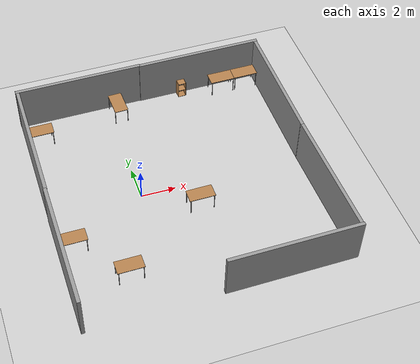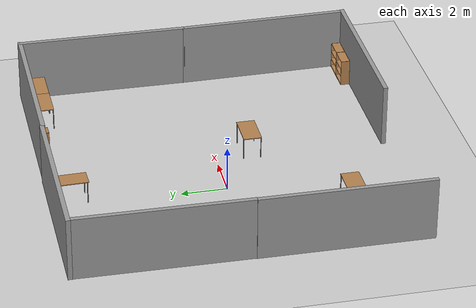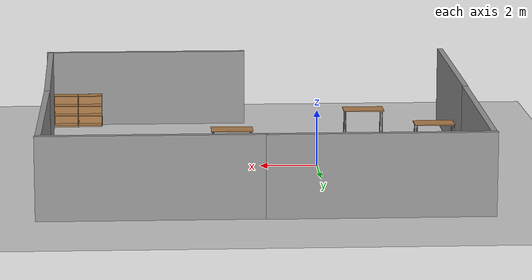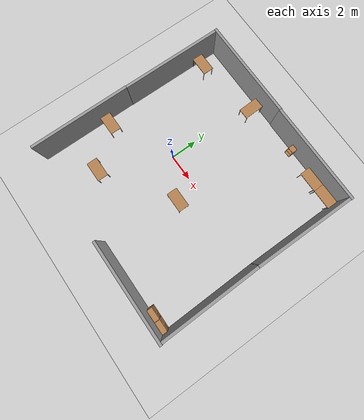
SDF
<sdf version="1.6">
 <world name="default">
  <light name="sun" type="directional">
   <pose>0 0 10 0 -0 0</pose>
   <diffuse>0.8 0.8 0.8 1</diffuse>
   <specular>0.2 0.2 0.2 1</specular>
   <attenuation>
    <range>1000</range>
    <constant>0.9</constant>
    <linear>0.01</linear>
    <quadratic>0.001</quadratic>
   </attenuation>
   <direction>-0.5 0.1 -0.9</direction>
  </light>
  <model name="ground_plane">
   <static>1</static>
   <link name="link">
    <collision name="collision">
     <geometry><plane><normal>0 0 1</normal><size>100 100</size></plane></geometry>
     <surface>
      <contact><collide_bitmask>65535</collide_bitmask></contact>
      <friction><ode><mu>100</mu><mu2>50</mu2></ode></friction>
     </surface>
    </collision>
    <visual name="visual">
     <cast_shadows>0</cast_shadows>
     <geometry><plane><normal>0 0 1</normal><size>100 100</size></plane></geometry>
     <material>
      <script><uri>file://media/materials/scripts/gazebo.material</uri><name>Gazebo/Grey</name></script>
     </material>
    </visual>
   </link>
  </model>
  <gravity>0 0 -9.8</gravity>
  <magnetic_field>6e-06 2.3e-05 -4.2e-05</magnetic_field>
  <atmosphere type="adiabatic"/>
  <physics name="default_physics" default="0" type="ode">
   <max_step_size>0.001</max_step_size>
   <real_time_factor>1</real_time_factor>
   <real_time_update_rate>1000</real_time_update_rate>
  </physics>
  <scene><ambient>0.4 0.4 0.4 1</ambient><background>0.7 0.7 0.7 1</background><shadows>1</shadows></scene>
  <spherical_coordinates>
   <surface_model>EARTH_WGS84</surface_model>
   <latitude_deg>0</latitude_deg>
   <longitude_deg>0</longitude_deg>
   <elevation>0</elevation>
   <heading_deg>0</heading_deg>
  </spherical_coordinates>
  <model name="grey_wall">
   <static>1</static>
   <link name="link">
    <pose>0 0 1.4 0 -0 0</pose>
    <collision name="collision"><geometry><box><size>7.5 0.2 2.8</size></box></geometry></collision>
    <visual name="visual">
     <cast_shadows>0</cast_shadows>
     <geometry><box><size>7.5 0.2 2.8</size></box></geometry>
     <material>
      <script>
       <uri>model://grey_wall/materials/scripts</uri>
       <uri>model://grey_wall/materials/textures</uri>
       <name>vrc/grey_wall</name>
      </script>
     </material>
    </visual>
   </link>
   <pose>5.90165 7.47527 0 0 -0 0</pose>
  </model>
  <model name="grey_wall_clone">
   <static>1</static>
   <link name="link">
    <pose>0 0 1.4 0 -0 0</pose>
    <collision name="collision"><geometry><box><size>7.5 0.2 2.8</size></box></geometry></collision>
    <visual name="visual">
     <cast_shadows>0</cast_shadows>
     <geometry><box><size>7.5 0.2 2.8</size></box></geometry>
     <material>
      <script>
       <uri>model://grey_wall/materials/scripts</uri>
       <uri>model://grey_wall/materials/textures</uri>
       <name>vrc/grey_wall</name>
      </script>
     </material>
    </visual>
   </link>
   <pose>-1.53483 7.51051 0 0 -0 0</pose>
  </model>
  <model name="grey_wall_clone_0">
   <static>1</static>
   <link name="link">
    <pose>0 0 1.4 0 -0 0</pose>
    <collision name="collision"><geometry><box><size>7.5 0.2 2.8</size></box></geometry></collision>
    <visual name="visual">
     <cast_shadows>0</cast_shadows>
     <geometry><box><size>7.5 0.2 2.8</size></box></geometry>
     <material>
      <script>
       <uri>model://grey_wall/materials/scripts</uri>
       <uri>model://grey_wall/materials/textures</uri>
       <name>vrc/grey_wall</name>
      </script>
     </material>
    </visual>
   </link>
   <pose>-5.20328 3.65912 0 0 -0 1.56118</pose>
  </model>
  <model name="grey_wall_clone_1">
   <static>1</static>
   <link name="link">
    <pose>0 0 1.4 0 -0 0</pose>
    <collision name="collision"><geometry><box><size>7.5 0.2 2.8</size></box></geometry></collision>
    <visual name="visual">
     <cast_shadows>0</cast_shadows>
     <geometry><box><size>7.5 0.2 2.8</size></box></geometry>
     <material>
      <script>
       <uri>model://grey_wall/materials/scripts</uri>
       <uri>model://grey_wall/materials/textures</uri>
       <name>vrc/grey_wall</name>
      </script>
     </material>
    </visual>
   </link>
   <pose>9.50636 3.7466 0 0 0 -1.57628</pose>
  </model>
  <model name="grey_wall_clone_2">
   <static>1</static>
   <link name="link">
    <pose>0 0 1.4 0 -0 0</pose>
    <collision name="collision"><geometry><box><size>7.5 0.2 2.8</size></box></geometry></collision>
    <visual name="visual">
     <cast_shadows>0</cast_shadows>
     <geometry><box><size>7.5 0.2 2.8</size></box></geometry>
     <material>
      <script>
       <uri>model://grey_wall/materials/scripts</uri>
       <uri>model://grey_wall/materials/textures</uri>
       <name>vrc/grey_wall</name>
      </script>
     </material>
    </visual>
   </link>
   <pose>9.54362 -3.68825 0 0 0 -1.55516</pose>
  </model>
  <model name="grey_wall_clone_3">
   <static>1</static>
   <link name="link">
    <pose>0 0 1.4 0 -0 0</pose>
    <collision name="collision"><geometry><box><size>7.5 0.2 2.8</size></box></geometry></collision>
    <visual name="visual">
     <cast_shadows>0</cast_shadows>
     <geometry><box><size>7.5 0.2 2.8</size></box></geometry>
     <material>
      <script>
       <uri>model://grey_wall/materials/scripts</uri>
       <uri>model://grey_wall/materials/textures</uri>
       <name>vrc/grey_wall</name>
      </script>
     </material>
    </visual>
   </link>
   <pose>5.99134 -7.4762 0 0 -0 0</pose>
  </model>
  <model name="grey_wall_clone_5">
   <static>1</static>
   <link name="link">
    <pose>0 0 1.4 0 -0 0</pose>
    <collision name="collision"><geometry><box><size>7.5 0.2 2.8</size></box></geometry></collision>
    <visual name="visual">
     <cast_shadows>0</cast_shadows>
     <geometry><box><size>7.5 0.2 2.8</size></box></geometry>
     <material>
      <script>
       <uri>model://grey_wall/materials/scripts</uri>
       <uri>model://grey_wall/materials/textures</uri>
       <name>vrc/grey_wall</name>
      </script>
     </material>
    </visual>
   </link>
   <pose>-5.27862 -3.8276 0 0 0 -1.57536</pose>
  </model>
  <model name="table">
   <static>1</static>
   <link name="link">
    <collision name="surface">
     <pose>0 0 1 0 -0 0</pose>
     <geometry><box><size>1.5 0.8 0.03</size></box></geometry>
     <surface><friction><ode><mu>0.6</mu><mu2>0.6</mu2></ode></friction></surface>
    </collision>
    <visual name="visual1">
     <pose>0 0 1 0 -0 0</pose>
     <geometry><box><size>1.5 0.8 0.03</size></box></geometry>
     <material>
      <script><uri>file://media/materials/scripts/gazebo.material</uri><name>Gazebo/Wood</name></script>
     </material>
    </visual>
    <collision name="front_left_leg">
     <pose>0.68 0.38 0.5 0 -0 0</pose>
     <geometry><cylinder><radius>0.02</radius><length>1</length></cylinder></geometry>
    </collision>
    <visual name="front_left_leg">
     <pose>0.68 0.38 0.5 0 -0 0</pose>
     <geometry><cylinder><radius>0.02</radius><length>1</length></cylinder></geometry>
     <material>
      <script><uri>file://media/materials/scripts/gazebo.material</uri><name>Gazebo/Grey</name></script>
     </material>
    </visual>
    <collision name="front_right_leg">
     <pose>0.68 -0.38 0.5 0 -0 0</pose>
     <geometry><cylinder><radius>0.02</radius><length>1</length></cylinder></geometry>
    </collision>
    <visual name="front_right_leg">
     <pose>0.68 -0.38 0.5 0 -0 0</pose>
     <geometry><cylinder><radius>0.02</radius><length>1</length></cylinder></geometry>
     <material>
      <script><uri>file://media/materials/scripts/gazebo.material</uri><name>Gazebo/Grey</name></script>
     </material>
    </visual>
    <collision name="back_right_leg">
     <pose>-0.68 -0.38 0.5 0 -0 0</pose>
     <geometry><cylinder><radius>0.02</radius><length>1</length></cylinder></geometry>
    </collision>
    <visual name="back_right_leg">
     <pose>-0.68 -0.38 0.5 0 -0 0</pose>
     <geometry><cylinder><radius>0.02</radius><length>1</length></cylinder></geometry>
     <material>
      <script><uri>file://media/materials/scripts/gazebo.material</uri><name>Gazebo/Grey</name></script>
     </material>
    </visual>
    <collision name="back_left_leg">
     <pose>-0.68 0.38 0.5 0 -0 0</pose>
     <geometry><cylinder><radius>0.02</radius><length>1</length></cylinder></geometry>
    </collision>
    <visual name="back_left_leg">
     <pose>-0.68 0.38 0.5 0 -0 0</pose>
     <geometry><cylinder><radius>0.02</radius><length>1</length></cylinder></geometry>
     <material>
      <script><uri>file://media/materials/scripts/gazebo.material</uri><name>Gazebo/Grey</name></script>
     </material>
    </visual>
   </link>
   <pose>8.66692 6.86787 0 0 -0 0</pose>
  </model>
  <model name="table_clone">
   <static>1</static>
   <link name="link">
    <collision name="surface">
     <pose>0 0 1 0 -0 0</pose>
     <geometry><box><size>1.5 0.8 0.03</size></box></geometry>
     <surface><friction><ode><mu>0.6</mu><mu2>0.6</mu2></ode></friction></surface>
    </collision>
    <visual name="visual1">
     <pose>0 0 1 0 -0 0</pose>
     <geometry><box><size>1.5 0.8 0.03</size></box></geometry>
     <material>
      <script><uri>file://media/materials/scripts/gazebo.material</uri><name>Gazebo/Wood</name></script>
     </material>
    </visual>
    <collision name="front_left_leg">
     <pose>0.68 0.38 0.5 0 -0 0</pose>
     <geometry><cylinder><radius>0.02</radius><length>1</length></cylinder></geometry>
    </collision>
    <visual name="front_left_leg">
     <pose>0.68 0.38 0.5 0 -0 0</pose>
     <geometry><cylinder><radius>0.02</radius><length>1</length></cylinder></geometry>
     <material>
      <script><uri>file://media/materials/scripts/gazebo.material</uri><name>Gazebo/Grey</name></script>
     </material>
    </visual>
    <collision name="front_right_leg">
     <pose>0.68 -0.38 0.5 0 -0 0</pose>
     <geometry><cylinder><radius>0.02</radius><length>1</length></cylinder></geometry>
    </collision>
    <visual name="front_right_leg">
     <pose>0.68 -0.38 0.5 0 -0 0</pose>
     <geometry><cylinder><radius>0.02</radius><length>1</length></cylinder></geometry>
     <material>
      <script><uri>file://media/materials/scripts/gazebo.material</uri><name>Gazebo/Grey</name></script>
     </material>
    </visual>
    <collision name="back_right_leg">
     <pose>-0.68 -0.38 0.5 0 -0 0</pose>
     <geometry><cylinder><radius>0.02</radius><length>1</length></cylinder></geometry>
    </collision>
    <visual name="back_right_leg">
     <pose>-0.68 -0.38 0.5 0 -0 0</pose>
     <geometry><cylinder><radius>0.02</radius><length>1</length></cylinder></geometry>
     <material>
      <script><uri>file://media/materials/scripts/gazebo.material</uri><name>Gazebo/Grey</name></script>
     </material>
    </visual>
    <collision name="back_left_leg">
     <pose>-0.68 0.38 0.5 0 -0 0</pose>
     <geometry><cylinder><radius>0.02</radius><length>1</length></cylinder></geometry>
    </collision>
    <visual name="back_left_leg">
     <pose>-0.68 0.38 0.5 0 -0 0</pose>
     <geometry><cylinder><radius>0.02</radius><length>1</length></cylinder></geometry>
     <material>
      <script><uri>file://media/materials/scripts/gazebo.material</uri><name>Gazebo/Grey</name></script>
     </material>
    </visual>
   </link>
   <pose>7.18469 6.86125 0 0 -0 0</pose>
  </model>
  <model name="table_0">
   <static>1</static>
   <link name="link">
    <collision name="surface">
     <pose>0 0 1 0 -0 0</pose>
     <geometry><box><size>1.5 0.8 0.03</size></box></geometry>
     <surface><friction><ode><mu>0.6</mu><mu2>0.6</mu2></ode></friction></surface>
    </collision>
    <visual name="visual1">
     <pose>0 0 1 0 -0 0</pose>
     <geometry><box><size>1.5 0.8 0.03</size></box></geometry>
     <material>
      <script><uri>file://media/materials/scripts/gazebo.material</uri><name>Gazebo/Wood</name></script>
     </material>
    </visual>
    <collision name="front_left_leg">
     <pose>0.68 0.38 0.5 0 -0 0</pose>
     <geometry><cylinder><radius>0.02</radius><length>1</length></cylinder></geometry>
    </collision>
    <visual name="front_left_leg">
     <pose>0.68 0.38 0.5 0 -0 0</pose>
     <geometry><cylinder><radius>0.02</radius><length>1</length></cylinder></geometry>
     <material>
      <script><uri>file://media/materials/scripts/gazebo.material</uri><name>Gazebo/Grey</name></script>
     </material>
    </visual>
    <collision name="front_right_leg">
     <pose>0.68 -0.38 0.5 0 -0 0</pose>
     <geometry><cylinder><radius>0.02</radius><length>1</length></cylinder></geometry>
    </collision>
    <visual name="front_right_leg">
     <pose>0.68 -0.38 0.5 0 -0 0</pose>
     <geometry><cylinder><radius>0.02</radius><length>1</length></cylinder></geometry>
     <material>
      <script><uri>file://media/materials/scripts/gazebo.material</uri><name>Gazebo/Grey</name></script>
     </material>
    </visual>
    <collision name="back_right_leg">
     <pose>-0.68 -0.38 0.5 0 -0 0</pose>
     <geometry><cylinder><radius>0.02</radius><length>1</length></cylinder></geometry>
    </collision>
    <visual name="back_right_leg">
     <pose>-0.68 -0.38 0.5 0 -0 0</pose>
     <geometry><cylinder><radius>0.02</radius><length>1</length></cylinder></geometry>
     <material>
      <script><uri>file://media/materials/scripts/gazebo.material</uri><name>Gazebo/Grey</name></script>
     </material>
    </visual>
    <collision name="back_left_leg">
     <pose>-0.68 0.38 0.5 0 -0 0</pose>
     <geometry><cylinder><radius>0.02</radius><length>1</length></cylinder></geometry>
    </collision>
    <visual name="back_left_leg">
     <pose>-0.68 0.38 0.5 0 -0 0</pose>
     <geometry><cylinder><radius>0.02</radius><length>1</length></cylinder></geometry>
     <material>
      <script><uri>file://media/materials/scripts/gazebo.material</uri><name>Gazebo/Grey</name></script>
     </material>
    </visual>
   </link>
   <pose>2.94508 -1.58833 0 0 -0 0</pose>
  </model>
  <model name="bookshelf">
   <static>1</static>
   <link name="link">
    <inertial><mass>1</mass></inertial>
    <collision name="back">
     <pose>0 0.005 0.6 0 -0 0</pose>
     <geometry><box><size>0.9 0.01 1.2</size></box></geometry>
    </collision>
    <visual name="visual1">
     <pose>0 0.005 0.6 0 -0 0</pose>
     <geometry><box><size>0.9 0.01 1.2</size></box></geometry>
     <material>
      <script><uri>file://media/materials/scripts/gazebo.material</uri><name>Gazebo/Wood</name></script>
     </material>
    </visual>
    <collision name="left_side">
     <pose>0.45 -0.195 0.6 0 -0 0</pose>
     <geometry><box><size>0.02 0.4 1.2</size></box></geometry>
    </collision>
    <visual name="visual2">
     <pose>0.45 -0.195 0.6 0 -0 0</pose>
     <geometry><box><size>0.02 0.4 1.2</size></box></geometry>
     <material>
      <script><uri>file://media/materials/scripts/gazebo.material</uri><name>Gazebo/Wood</name></script>
     </material>
    </visual>
    <collision name="right_side">
     <pose>-0.45 -0.195 0.6 0 -0 0</pose>
     <geometry><box><size>0.02 0.4 1.2</size></box></geometry>
    </collision>
    <visual name="visual3">
     <pose>-0.45 -0.195 0.6 0 -0 0</pose>
     <geometry><box><size>0.02 0.4 1.2</size></box></geometry>
     <material>
      <script><uri>file://media/materials/scripts/gazebo.material</uri><name>Gazebo/Wood</name></script>
     </material>
    </visual>
    <collision name="bottom">
     <pose>0 -0.195 0.03 0 -0 0</pose>
     <geometry><box><size>0.88 0.4 0.06</size></box></geometry>
    </collision>
    <visual name="visual4">
     <pose>0 -0.195 0.03 0 -0 0</pose>
     <geometry><box><size>0.88 0.4 0.06</size></box></geometry>
     <material>
      <script><uri>file://media/materials/scripts/gazebo.material</uri><name>Gazebo/Wood</name></script>
     </material>
    </visual>
    <collision name="top">
     <pose>0 -0.195 1.19 0 -0 0</pose>
     <geometry><box><size>0.88 0.4 0.02</size></box></geometry>
    </collision>
    <visual name="visual5">
     <pose>0 -0.195 1.19 0 -0 0</pose>
     <geometry><box><size>0.88 0.4 0.02</size></box></geometry>
     <material>
      <script><uri>file://media/materials/scripts/gazebo.material</uri><name>Gazebo/Wood</name></script>
     </material>
    </visual>
    <collision name="low_shelf">
     <pose>0 -0.195 0.43 0 -0 0</pose>
     <geometry><box><size>0.88 0.4 0.02</size></box></geometry>
    </collision>
    <visual name="visual6">
     <pose>0 -0.195 0.43 0 -0 0</pose>
     <geometry><box><size>0.88 0.4 0.02</size></box></geometry>
     <material>
      <script><uri>file://media/materials/scripts/gazebo.material</uri><name>Gazebo/Wood</name></script>
     </material>
    </visual>
    <collision name="high_shelf">
     <pose>0 -0.195 0.8 0 -0 0</pose>
     <geometry><box><size>0.88 0.4 0.02</size></box></geometry>
    </collision>
    <visual name="visual7">
     <pose>0 -0.195 0.8 0 -0 0</pose>
     <geometry><box><size>0.88 0.4 0.02</size></box></geometry>
     <material>
      <script><uri>file://media/materials/scripts/gazebo.material</uri><name>Gazebo/Wood</name></script>
     </material>
    </visual>
   </link>
   <pose>9.0472 -7.36988 0 0 -0 3.13895</pose>
  </model>
  <model name="bookshelf_clone">
   <static>1</static>
   <link name="link">
    <inertial><mass>1</mass></inertial>
    <collision name="back">
     <pose>0 0.005 0.6 0 -0 0</pose>
     <geometry><box><size>0.9 0.01 1.2</size></box></geometry>
    </collision>
    <visual name="visual1">
     <pose>0 0.005 0.6 0 -0 0</pose>
     <geometry><box><size>0.9 0.01 1.2</size></box></geometry>
     <material>
      <script><uri>file://media/materials/scripts/gazebo.material</uri><name>Gazebo/Wood</name></script>
     </material>
    </visual>
    <collision name="left_side">
     <pose>0.45 -0.195 0.6 0 -0 0</pose>
     <geometry><box><size>0.02 0.4 1.2</size></box></geometry>
    </collision>
    <visual name="visual2">
     <pose>0.45 -0.195 0.6 0 -0 0</pose>
     <geometry><box><size>0.02 0.4 1.2</size></box></geometry>
     <material>
      <script><uri>file://media/materials/scripts/gazebo.material</uri><name>Gazebo/Wood</name></script>
     </material>
    </visual>
    <collision name="right_side">
     <pose>-0.45 -0.195 0.6 0 -0 0</pose>
     <geometry><box><size>0.02 0.4 1.2</size></box></geometry>
    </collision>
    <visual name="visual3">
     <pose>-0.45 -0.195 0.6 0 -0 0</pose>
     <geometry><box><size>0.02 0.4 1.2</size></box></geometry>
     <material>
      <script><uri>file://media/materials/scripts/gazebo.material</uri><name>Gazebo/Wood</name></script>
     </material>
    </visual>
    <collision name="bottom">
     <pose>0 -0.195 0.03 0 -0 0</pose>
     <geometry><box><size>0.88 0.4 0.06</size></box></geometry>
    </collision>
    <visual name="visual4">
     <pose>0 -0.195 0.03 0 -0 0</pose>
     <geometry><box><size>0.88 0.4 0.06</size></box></geometry>
     <material>
      <script><uri>file://media/materials/scripts/gazebo.material</uri><name>Gazebo/Wood</name></script>
     </material>
    </visual>
    <collision name="top">
     <pose>0 -0.195 1.19 0 -0 0</pose>
     <geometry><box><size>0.88 0.4 0.02</size></box></geometry>
    </collision>
    <visual name="visual5">
     <pose>0 -0.195 1.19 0 -0 0</pose>
     <geometry><box><size>0.88 0.4 0.02</size></box></geometry>
     <material>
      <script><uri>file://media/materials/scripts/gazebo.material</uri><name>Gazebo/Wood</name></script>
     </material>
    </visual>
    <collision name="low_shelf">
     <pose>0 -0.195 0.43 0 -0 0</pose>
     <geometry><box><size>0.88 0.4 0.02</size></box></geometry>
    </collision>
    <visual name="visual6">
     <pose>0 -0.195 0.43 0 -0 0</pose>
     <geometry><box><size>0.88 0.4 0.02</size></box></geometry>
     <material>
      <script><uri>file://media/materials/scripts/gazebo.material</uri><name>Gazebo/Wood</name></script>
     </material>
    </visual>
    <collision name="high_shelf">
     <pose>0 -0.195 0.8 0 -0 0</pose>
     <geometry><box><size>0.88 0.4 0.02</size></box></geometry>
    </collision>
    <visual name="visual7">
     <pose>0 -0.195 0.8 0 -0 0</pose>
     <geometry><box><size>0.88 0.4 0.02</size></box></geometry>
     <material>
      <script><uri>file://media/materials/scripts/gazebo.material</uri><name>Gazebo/Wood</name></script>
     </material>
    </visual>
   </link>
   <pose>8.13691 -7.36715 0 0 -0 3.13895</pose>
  </model>
  <model name="cabinet">
   <static>1</static>
   <link name="cabinet_bottom_plate">
    <inertial>
     <pose>0 0 -1 0 -0 0</pose>
     <inertia><ixx>2.05</ixx><ixy>0</ixy><ixz>0</ixz><iyy>2.05</iyy><iyz>0</iyz><izz>2.05</izz></inertia>
     <mass>25</mass>
    </inertial>
    <collision name="cabinet_bottom_plate_geom">
     <pose>0 0 0.01 0 -0 0</pose>
     <geometry><box><size>0.45 0.45 0.02</size></box></geometry>
    </collision>
    <visual name="cabinet_bottom_plate_geom_visual">
     <pose>0 0 0.01 0 -0 0</pose>
     <geometry><box><size>0.45 0.45 0.02</size></box></geometry>
     <material>
      <script><uri>file://media/materials/scripts/gazebo.material</uri><name>Gazebo/Wood</name></script>
     </material>
    </visual>
    <collision name="cabinet_bottom_plate_geom_cabinet_back_plate">
     <pose>0.235 0 0.51 0 -0 0</pose>
     <geometry><box><size>0.02 0.45 1.02</size></box></geometry>
    </collision>
    <visual name="cabinet_bottom_plate_geom_cabinet_back_plate_visual">
     <pose>0.235 0 0.51 0 -0 0</pose>
     <geometry><box><size>0.02 0.45 1.02</size></box></geometry>
     <material>
      <script><uri>file://media/materials/scripts/gazebo.material</uri><name>Gazebo/Wood</name></script>
     </material>
    </visual>
    <collision name="cabinet_bottom_plate_geom_cabinet_left_plate">
     <pose>0 0.235 0.51 0 -0 0</pose>
     <geometry><box><size>0.45 0.02 1.02</size></box></geometry>
    </collision>
    <visual name="cabinet_bottom_plate_geom_cabinet_left_plate_visual">
     <pose>0 0.235 0.51 0 -0 0</pose>
     <geometry><box><size>0.45 0.02 1.02</size></box></geometry>
     <material>
      <script><uri>file://media/materials/scripts/gazebo.material</uri><name>Gazebo/Wood</name></script>
     </material>
    </visual>
    <collision name="cabinet_bottom_plate_geom_cabinet_middle_plate">
     <pose>0 0 0.51 0 -0 0</pose>
     <geometry><box><size>0.45 0.45 0.02</size></box></geometry>
    </collision>
    <visual name="cabinet_bottom_plate_geom_cabinet_middle_plate_visual">
     <pose>0 0 0.51 0 -0 0</pose>
     <geometry><box><size>0.45 0.45 0.02</size></box></geometry>
     <material>
      <script><uri>file://media/materials/scripts/gazebo.material</uri><name>Gazebo/Wood</name></script>
     </material>
    </visual>
    <collision name="cabinet_bottom_plate_geom_cabinet_right_plate">
     <pose>0 -0.235 0.51 0 -0 0</pose>
     <geometry><box><size>0.45 0.02 1.02</size></box></geometry>
    </collision>
    <visual name="cabinet_bottom_plate_geom_cabinet_right_plate_visual">
     <pose>0 -0.235 0.51 0 -0 0</pose>
     <geometry><box><size>0.45 0.02 1.02</size></box></geometry>
     <material>
      <script><uri>file://media/materials/scripts/gazebo.material</uri><name>Gazebo/Wood</name></script>
     </material>
    </visual>
    <collision name="cabinet_bottom_plate_geom_cabinet_top_plate">
     <pose>0 0 1.01 0 -0 0</pose>
     <geometry><box><size>0.45 0.45 0.02</size></box></geometry>
    </collision>
    <visual name="cabinet_bottom_plate_geom_cabinet_top_plate_visual">
     <pose>0 0 1.01 0 -0 0</pose>
     <geometry><box><size>0.45 0.45 0.02</size></box></geometry>
     <material>
      <script><uri>file://media/materials/scripts/gazebo.material</uri><name>Gazebo/Wood</name></script>
     </material>
    </visual>
   </link>
   <pose>4.70336 7.176 0 0 -0 1.59926</pose>
  </model>
  <model name="table_clone_clone">
   <static>1</static>
   <link name="link">
    <collision name="surface">
     <pose>0 0 1 0 -0 0</pose>
     <geometry><box><size>1.5 0.8 0.03</size></box></geometry>
     <surface><friction><ode><mu>0.6</mu><mu2>0.6</mu2></ode></friction></surface>
    </collision>
    <visual name="visual1">
     <pose>0 0 1 0 -0 0</pose>
     <geometry><box><size>1.5 0.8 0.03</size></box></geometry>
     <material>
      <script><uri>file://media/materials/scripts/gazebo.material</uri><name>Gazebo/Wood</name></script>
     </material>
    </visual>
    <collision name="front_left_leg">
     <pose>0.68 0.38 0.5 0 -0 0</pose>
     <geometry><cylinder><radius>0.02</radius><length>1</length></cylinder></geometry>
    </collision>
    <visual name="front_left_leg">
     <pose>0.68 0.38 0.5 0 -0 0</pose>
     <geometry><cylinder><radius>0.02</radius><length>1</length></cylinder></geometry>
     <material>
      <script><uri>file://media/materials/scripts/gazebo.material</uri><name>Gazebo/Grey</name></script>
     </material>
    </visual>
    <collision name="front_right_leg">
     <pose>0.68 -0.38 0.5 0 -0 0</pose>
     <geometry><cylinder><radius>0.02</radius><length>1</length></cylinder></geometry>
    </collision>
    <visual name="front_right_leg">
     <pose>0.68 -0.38 0.5 0 -0 0</pose>
     <geometry><cylinder><radius>0.02</radius><length>1</length></cylinder></geometry>
     <material>
      <script><uri>file://media/materials/scripts/gazebo.material</uri><name>Gazebo/Grey</name></script>
     </material>
    </visual>
    <collision name="back_right_leg">
     <pose>-0.68 -0.38 0.5 0 -0 0</pose>
     <geometry><cylinder><radius>0.02</radius><length>1</length></cylinder></geometry>
    </collision>
    <visual name="back_right_leg">
     <pose>-0.68 -0.38 0.5 0 -0 0</pose>
     <geometry><cylinder><radius>0.02</radius><length>1</length></cylinder></geometry>
     <material>
      <script><uri>file://media/materials/scripts/gazebo.material</uri><name>Gazebo/Grey</name></script>
     </material>
    </visual>
    <collision name="back_left_leg">
     <pose>-0.68 0.38 0.5 0 -0 0</pose>
     <geometry><cylinder><radius>0.02</radius><length>1</length></cylinder></geometry>
    </collision>
    <visual name="back_left_leg">
     <pose>-0.68 0.38 0.5 0 -0 0</pose>
     <geometry><cylinder><radius>0.02</radius><length>1</length></cylinder></geometry>
     <material>
      <script><uri>file://media/materials/scripts/gazebo.material</uri><name>Gazebo/Grey</name></script>
     </material>
    </visual>
   </link>
   <pose>0.540778 6.6295 0 0 0 -1.54267</pose>
  </model>
  <model name="table_0_clone">
   <static>1</static>
   <link name="link">
    <collision name="surface">
     <pose>0 0 1 0 -0 0</pose>
     <geometry><box><size>1.5 0.8 0.03</size></box></geometry>
     <surface><friction><ode><mu>0.6</mu><mu2>0.6</mu2></ode></friction></surface>
    </collision>
    <visual name="visual1">
     <pose>0 0 1 0 -0 0</pose>
     <geometry><box><size>1.5 0.8 0.03</size></box></geometry>
     <material>
      <script><uri>file://media/materials/scripts/gazebo.material</uri><name>Gazebo/Wood</name></script>
     </material>
    </visual>
    <collision name="front_left_leg">
     <pose>0.68 0.38 0.5 0 -0 0</pose>
     <geometry><cylinder><radius>0.02</radius><length>1</length></cylinder></geometry>
    </collision>
    <visual name="front_left_leg">
     <pose>0.68 0.38 0.5 0 -0 0</pose>
     <geometry><cylinder><radius>0.02</radius><length>1</length></cylinder></geometry>
     <material>
      <script><uri>file://media/materials/scripts/gazebo.material</uri><name>Gazebo/Grey</name></script>
     </material>
    </visual>
    <collision name="front_right_leg">
     <pose>0.68 -0.38 0.5 0 -0 0</pose>
     <geometry><cylinder><radius>0.02</radius><length>1</length></cylinder></geometry>
    </collision>
    <visual name="front_right_leg">
     <pose>0.68 -0.38 0.5 0 -0 0</pose>
     <geometry><cylinder><radius>0.02</radius><length>1</length></cylinder></geometry>
     <material>
      <script><uri>file://media/materials/scripts/gazebo.material</uri><name>Gazebo/Grey</name></script>
     </material>
    </visual>
    <collision name="back_right_leg">
     <pose>-0.68 -0.38 0.5 0 -0 0</pose>
     <geometry><cylinder><radius>0.02</radius><length>1</length></cylinder></geometry>
    </collision>
    <visual name="back_right_leg">
     <pose>-0.68 -0.38 0.5 0 -0 0</pose>
     <geometry><cylinder><radius>0.02</radius><length>1</length></cylinder></geometry>
     <material>
      <script><uri>file://media/materials/scripts/gazebo.material</uri><name>Gazebo/Grey</name></script>
     </material>
    </visual>
    <collision name="back_left_leg">
     <pose>-0.68 0.38 0.5 0 -0 0</pose>
     <geometry><cylinder><radius>0.02</radius><length>1</length></cylinder></geometry>
    </collision>
    <visual name="back_left_leg">
     <pose>-0.68 0.38 0.5 0 -0 0</pose>
     <geometry><cylinder><radius>0.02</radius><length>1</length></cylinder></geometry>
     <material>
      <script><uri>file://media/materials/scripts/gazebo.material</uri><name>Gazebo/Grey</name></script>
     </material>
    </visual>
   </link>
   <pose>-2.10391 -4.95604 0 0 -0 0</pose>
  </model>
  <model name="table_0_clone_0">
   <static>1</static>
   <link name="link">
    <collision name="surface">
     <pose>0 0 1 0 -0 0</pose>
     <geometry><box><size>1.5 0.8 0.03</size></box></geometry>
     <surface><friction><ode><mu>0.6</mu><mu2>0.6</mu2></ode></friction></surface>
    </collision>
    <visual name="visual1">
     <pose>0 0 1 0 -0 0</pose>
     <geometry><box><size>1.5 0.8 0.03</size></box></geometry>
     <material>
      <script><uri>file://media/materials/scripts/gazebo.material</uri><name>Gazebo/Wood</name></script>
     </material>
    </visual>
    <collision name="front_left_leg">
     <pose>0.68 0.38 0.5 0 -0 0</pose>
     <geometry><cylinder><radius>0.02</radius><length>1</length></cylinder></geometry>
    </collision>
    <visual name="front_left_leg">
     <pose>0.68 0.38 0.5 0 -0 0</pose>
     <geometry><cylinder><radius>0.02</radius><length>1</length></cylinder></geometry>
     <material>
      <script><uri>file://media/materials/scripts/gazebo.material</uri><name>Gazebo/Grey</name></script>
     </material>
    </visual>
    <collision name="front_right_leg">
     <pose>0.68 -0.38 0.5 0 -0 0</pose>
     <geometry><cylinder><radius>0.02</radius><length>1</length></cylinder></geometry>
    </collision>
    <visual name="front_right_leg">
     <pose>0.68 -0.38 0.5 0 -0 0</pose>
     <geometry><cylinder><radius>0.02</radius><length>1</length></cylinder></geometry>
     <material>
      <script><uri>file://media/materials/scripts/gazebo.material</uri><name>Gazebo/Grey</name></script>
     </material>
    </visual>
    <collision name="back_right_leg">
     <pose>-0.68 -0.38 0.5 0 -0 0</pose>
     <geometry><cylinder><radius>0.02</radius><length>1</length></cylinder></geometry>
    </collision>
    <visual name="back_right_leg">
     <pose>-0.68 -0.38 0.5 0 -0 0</pose>
     <geometry><cylinder><radius>0.02</radius><length>1</length></cylinder></geometry>
     <material>
      <script><uri>file://media/materials/scripts/gazebo.material</uri><name>Gazebo/Grey</name></script>
     </material>
    </visual>
    <collision name="back_left_leg">
     <pose>-0.68 0.38 0.5 0 -0 0</pose>
     <geometry><cylinder><radius>0.02</radius><length>1</length></cylinder></geometry>
    </collision>
    <visual name="back_left_leg">
     <pose>-0.68 0.38 0.5 0 -0 0</pose>
     <geometry><cylinder><radius>0.02</radius><length>1</length></cylinder></geometry>
     <material>
      <script><uri>file://media/materials/scripts/gazebo.material</uri><name>Gazebo/Grey</name></script>
     </material>
    </visual>
   </link>
   <pose>-4.46268 -2.34354 0 0 -0 0</pose>
  </model>
  <model name="table_1">
   <static>1</static>
   <link name="link">
    <collision name="surface">
     <pose>0 0 1 0 -0 0</pose>
     <geometry><box><size>1.5 0.8 0.03</size></box></geometry>
     <surface><friction><ode><mu>0.6</mu><mu2>0.6</mu2></ode></friction></surface>
    </collision>
    <visual name="visual1">
     <pose>0 0 1 0 -0 0</pose>
     <geometry><box><size>1.5 0.8 0.03</size></box></geometry>
     <material>
      <script><uri>file://media/materials/scripts/gazebo.material</uri><name>Gazebo/Wood</name></script>
     </material>
    </visual>
    <collision name="front_left_leg">
     <pose>0.68 0.38 0.5 0 -0 0</pose>
     <geometry><cylinder><radius>0.02</radius><length>1</length></cylinder></geometry>
    </collision>
    <visual name="front_left_leg">
     <pose>0.68 0.38 0.5 0 -0 0</pose>
     <geometry><cylinder><radius>0.02</radius><length>1</length></cylinder></geometry>
     <material>
      <script><uri>file://media/materials/scripts/gazebo.material</uri><name>Gazebo/Grey</name></script>
     </material>
    </visual>
    <collision name="front_right_leg">
     <pose>0.68 -0.38 0.5 0 -0 0</pose>
     <geometry><cylinder><radius>0.02</radius><length>1</length></cylinder></geometry>
    </collision>
    <visual name="front_right_leg">
     <pose>0.68 -0.38 0.5 0 -0 0</pose>
     <geometry><cylinder><radius>0.02</radius><length>1</length></cylinder></geometry>
     <material>
      <script><uri>file://media/materials/scripts/gazebo.material</uri><name>Gazebo/Grey</name></script>
     </material>
    </visual>
    <collision name="back_right_leg">
     <pose>-0.68 -0.38 0.5 0 -0 0</pose>
     <geometry><cylinder><radius>0.02</radius><length>1</length></cylinder></geometry>
    </collision>
    <visual name="back_right_leg">
     <pose>-0.68 -0.38 0.5 0 -0 0</pose>
     <geometry><cylinder><radius>0.02</radius><length>1</length></cylinder></geometry>
     <material>
      <script><uri>file://media/materials/scripts/gazebo.material</uri><name>Gazebo/Grey</name></script>
     </material>
    </visual>
    <collision name="back_left_leg">
     <pose>-0.68 0.38 0.5 0 -0 0</pose>
     <geometry><cylinder><radius>0.02</radius><length>1</length></cylinder></geometry>
    </collision>
    <visual name="back_left_leg">
     <pose>-0.68 0.38 0.5 0 -0 0</pose>
     <geometry><cylinder><radius>0.02</radius><length>1</length></cylinder></geometry>
     <material>
      <script><uri>file://media/materials/scripts/gazebo.material</uri><name>Gazebo/Grey</name></script>
     </material>
    </visual>
   </link>
   <pose>-4.38806 5.83436 0 0 -0 0</pose>
  </model>
 </world>
</sdf>
